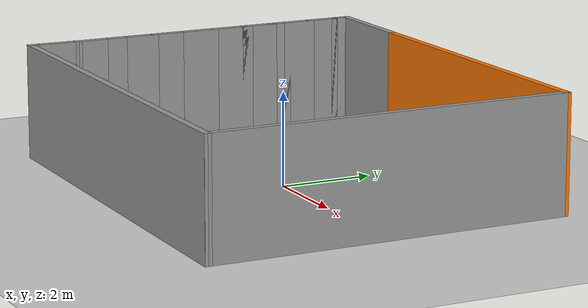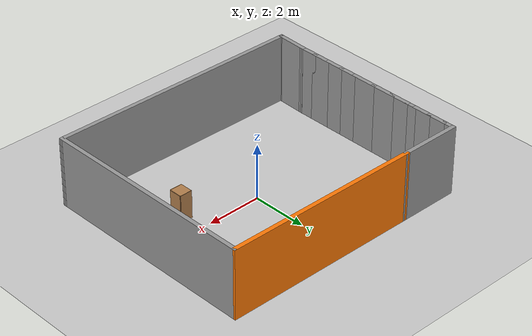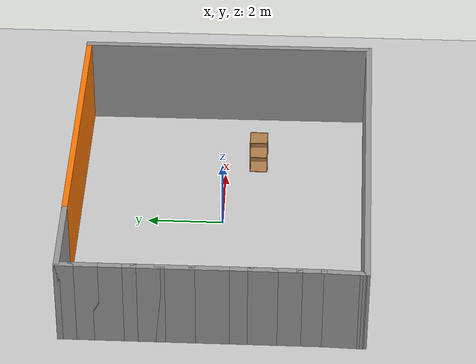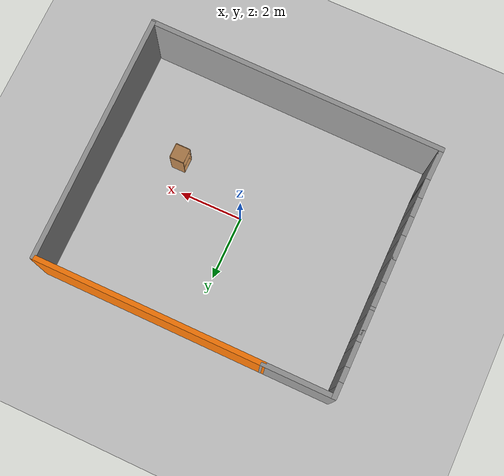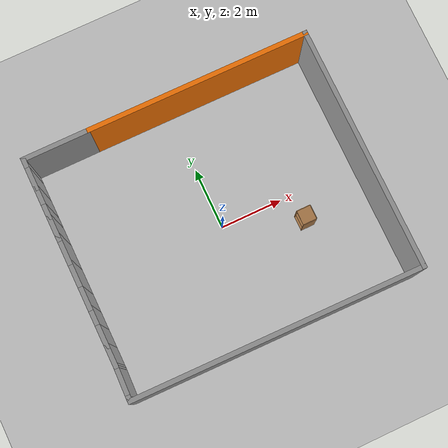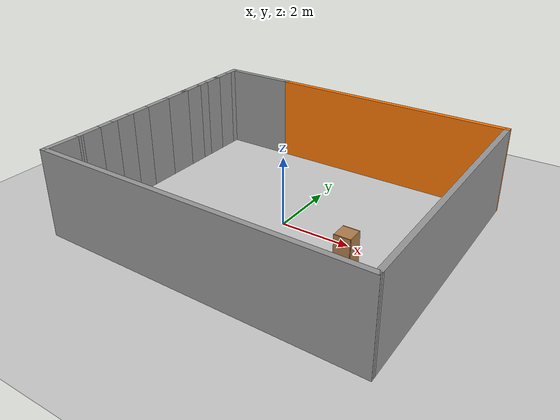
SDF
<sdf version="1.7">
 <world name="default">
  <light name="sun" type="directional">
   <pose>0 0 10 0 -0 0</pose>
   <diffuse>0.8 0.8 0.8 1</diffuse>
   <specular>0.2 0.2 0.2 1</specular>
   <attenuation>
    <range>1000</range>
    <constant>0.9</constant>
    <linear>0.01</linear>
    <quadratic>0.001</quadratic>
   </attenuation>
   <direction>-0.5 0.1 -0.9</direction>
   <spot><inner_angle>0</inner_angle><outer_angle>0</outer_angle><falloff>0</falloff></spot>
  </light>
  <model name="ground_plane">
   <static>1</static>
   <link name="link">
    <collision name="collision">
     <geometry><plane><normal>0 0 1</normal><size>100 100</size></plane></geometry>
     <surface>
      <contact><collide_bitmask>65535</collide_bitmask></contact>
      <friction><ode><mu>100</mu><mu2>50</mu2></ode></friction>
     </surface>
    </collision>
    <visual name="visual">
     <cast_shadows>0</cast_shadows>
     <geometry><plane><normal>0 0 1</normal><size>100 100</size></plane></geometry>
     <material>
      <script><uri>file://media/materials/scripts/gazebo.material</uri><name>Gazebo/Grey</name></script>
     </material>
    </visual>
   </link>
  </model>
  <gravity>0 0 -9.8</gravity>
  <magnetic_field>6e-06 2.3e-05 -4.2e-05</magnetic_field>
  <atmosphere type="adiabatic"/>
  <physics type="ode">
   <max_step_size>0.001</max_step_size>
   <real_time_factor>1</real_time_factor>
   <real_time_update_rate>1000</real_time_update_rate>
  </physics>
  <scene><ambient>0.4 0.4 0.4 1</ambient><background>0.7 0.7 0.7 1</background><shadows>1</shadows></scene>
  <audio><device>default</device></audio>
  <spherical_coordinates>
   <surface_model>EARTH_WGS84</surface_model>
   <latitude_deg>0</latitude_deg>
   <longitude_deg>0</longitude_deg>
   <elevation>0</elevation>
   <heading_deg>0</heading_deg>
  </spherical_coordinates>
  <model name="Untitled">
   <pose>-0.022327 0.03811 0 0 -0 0</pose>
   <link name="Wall_25">
    <collision name="Wall_25_Collision">
     <geometry><box><size>9.35832 0.15 2.5</size></box></geometry>
     <pose>0 0 1.25 0 -0 0</pose>
    </collision>
    <visual name="Wall_25_Visual">
     <pose>0 0 1.25 0 -0 0</pose>
     <geometry><box><size>9.35832 0.15 2.5</size></box></geometry>
     <material>
      <script><uri>file://media/materials/scripts/gazebo.material</uri><name>Gazebo/Grey</name></script>
      <ambient>1 1 1 1</ambient>
     </material>
     <meta><layer>0</layer></meta>
    </visual>
    <pose>0.00085 -3.82916 0 0 -0 -0.011114</pose>
   </link>
   <link name="Wall_26">
    <collision name="Wall_26_Collision">
     <geometry><box><size>7.88834 0.15 2.5</size></box></geometry>
     <pose>0 0 1.25 0 -0 0</pose>
    </collision>
    <visual name="Wall_26_Visual">
     <pose>0 0 1.25 0 -0 0</pose>
     <geometry><box><size>7.88834 0.15 2.5</size></box></geometry>
     <material>
      <script><uri>file://media/materials/scripts/gazebo.material</uri><name>Gazebo/Grey</name></script>
      <ambient>1 1 1 1</ambient>
     </material>
     <meta><layer>0</layer></meta>
    </visual>
    <pose>4.58764 -0.008353 0 0 -0 1.57521</pose>
   </link>
   <link name="Wall_28">
    <collision name="Wall_28_Collision">
     <geometry><box><size>7.19057 0.15 2.5</size></box></geometry>
     <pose>0 0 1.25 0 -0 0</pose>
    </collision>
    <visual name="Wall_28_Visual">
     <pose>0 0 1.25 0 -0 0</pose>
     <geometry><box><size>7.19057 0.15 2.5</size></box></geometry>
     <material>
      <script><uri>file://media/materials/scripts/gazebo.material</uri><name>Gazebo/Grey</name></script>
      <ambient>0.996078 0.47451 0.0196078 1</ambient>
     </material>
     <meta><layer>0</layer></meta>
    </visual>
    <pose>1.0503 3.8723 0 0 -0 3.13913</pose>
   </link>
   <link name="Wall_49">
    <collision name="Wall_49_Collision">
     <geometry><box><size>2.25 0.15 2.5</size></box></geometry>
     <pose>0 0 1.25 0 -0 0</pose>
    </collision>
    <visual name="Wall_49_Visual">
     <pose>0 0 1.25 0 -0 0</pose>
     <geometry><box><size>2.25 0.15 2.5</size></box></geometry>
     <material>
      <script><uri>file://media/materials/scripts/gazebo.material</uri><name>Gazebo/Grey</name></script>
      <ambient>1 1 1 1</ambient>
     </material>
     <meta><layer>0</layer></meta>
    </visual>
    <pose>-3.51997 3.88097 0 0 -0 3.14159</pose>
   </link>
   <link name="Wall_51">
    <collision name="Wall_51_Collision">
     <geometry><box><size>0.5 0.15 2.5</size></box></geometry>
     <pose>0 0 1.25 0 -0 0</pose>
    </collision>
    <visual name="Wall_51_Visual">
     <pose>0 0 1.25 0 -0 0</pose>
     <geometry><box><size>0.5 0.15 2.5</size></box></geometry>
     <material>
      <script><uri>file://media/materials/scripts/gazebo.material</uri><name>Gazebo/Grey</name></script>
      <ambient>1 1 1 1</ambient>
     </material>
     <meta><layer>0</layer></meta>
    </visual>
    <pose>-4.56997 3.70597 0 0 -0 -1.5708</pose>
   </link>
   <link name="Wall_54">
    <collision name="Wall_54_Collision">
     <geometry><box><size>0.75 0.15 2.5</size></box></geometry>
     <pose>0 0 1.25 0 -0 0</pose>
    </collision>
    <visual name="Wall_54_Visual">
     <pose>0 0 1.25 0 -0 0</pose>
     <geometry><box><size>0.75 0.15 2.5</size></box></geometry>
     <material>
      <script><uri>file://media/materials/scripts/gazebo.material</uri><name>Gazebo/Grey</name></script>
      <ambient>1 1 1 1</ambient>
     </material>
     <meta><layer>0</layer></meta>
    </visual>
    <pose>-4.56997 3.23097 0 0 -0 -1.5708</pose>
   </link>
   <link name="Wall_56">
    <collision name="Wall_56_Collision">
     <geometry><box><size>0.75 0.15 2.5</size></box></geometry>
     <pose>0 0 1.25 0 -0 0</pose>
    </collision>
    <visual name="Wall_56_Visual">
     <pose>0 0 1.25 0 -0 0</pose>
     <geometry><box><size>0.75 0.15 2.5</size></box></geometry>
     <material>
      <script><uri>file://media/materials/scripts/gazebo.material</uri><name>Gazebo/Grey</name></script>
      <ambient>1 1 1 1</ambient>
     </material>
     <meta><layer>0</layer></meta>
    </visual>
    <pose>-4.56997 2.63097 0 0 -0 -1.5708</pose>
   </link>
   <link name="Wall_58">
    <collision name="Wall_58_Collision">
     <geometry><box><size>0.5 0.15 2.5</size></box></geometry>
     <pose>0 0 1.25 0 -0 0</pose>
    </collision>
    <visual name="Wall_58_Visual">
     <pose>0 0 1.25 0 -0 0</pose>
     <geometry><box><size>0.5 0.15 2.5</size></box></geometry>
     <material>
      <script><uri>file://media/materials/scripts/gazebo.material</uri><name>Gazebo/Grey</name></script>
      <ambient>1 1 1 1</ambient>
     </material>
     <meta><layer>0</layer></meta>
    </visual>
    <pose>-4.56997 2.15597 0 0 -0 -1.5708</pose>
   </link>
   <link name="Wall_62">
    <collision name="Wall_62_Collision">
     <geometry><box><size>0.75 0.15 2.5</size></box></geometry>
     <pose>0 0 1.25 0 -0 0</pose>
    </collision>
    <visual name="Wall_62_Visual">
     <pose>0 0 1.25 0 -0 0</pose>
     <geometry><box><size>0.75 0.15 2.5</size></box></geometry>
     <material>
      <script><uri>file://media/materials/scripts/gazebo.material</uri><name>Gazebo/Grey</name></script>
      <ambient>1 1 1 1</ambient>
     </material>
     <meta><layer>0</layer></meta>
    </visual>
    <pose>-4.56997 1.68097 0 0 -0 -1.5708</pose>
   </link>
   <link name="Wall_63">
    <collision name="Wall_63_Collision">
     <geometry><box><size>0.25 0.15 2.5</size></box></geometry>
     <pose>0 0 1.25 0 -0 0</pose>
    </collision>
    <visual name="Wall_63_Visual">
     <pose>0 0 1.25 0 -0 0</pose>
     <geometry><box><size>0.25 0.15 2.5</size></box></geometry>
     <material>
      <script><uri>file://media/materials/scripts/gazebo.material</uri><name>Gazebo/Grey</name></script>
      <ambient>1 1 1 1</ambient>
     </material>
     <meta><layer>0</layer></meta>
    </visual>
    <pose>-4.56997 1.33097 0 0 -0 -1.5708</pose>
   </link>
   <link name="Wall_65">
    <collision name="Wall_65_Collision">
     <geometry><box><size>1 0.15 2.5</size></box></geometry>
     <pose>0 0 1.25 0 -0 0</pose>
    </collision>
    <visual name="Wall_65_Visual">
     <pose>0 0 1.25 0 -0 0</pose>
     <geometry><box><size>1 0.15 2.5</size></box></geometry>
     <material>
      <script><uri>file://media/materials/scripts/gazebo.material</uri><name>Gazebo/Grey</name></script>
      <ambient>1 1 1 1</ambient>
     </material>
     <meta><layer>0</layer></meta>
    </visual>
    <pose>-4.56997 0.955971 0 0 -0 -1.5708</pose>
   </link>
   <link name="Wall_67">
    <collision name="Wall_67_Collision">
     <geometry><box><size>1 0.15 2.5</size></box></geometry>
     <pose>0 0 1.25 0 -0 0</pose>
    </collision>
    <visual name="Wall_67_Visual">
     <pose>0 0 1.25 0 -0 0</pose>
     <geometry><box><size>1 0.15 2.5</size></box></geometry>
     <material>
      <script><uri>file://media/materials/scripts/gazebo.material</uri><name>Gazebo/Grey</name></script>
      <ambient>1 1 1 1</ambient>
     </material>
     <meta><layer>0</layer></meta>
    </visual>
    <pose>-4.56997 0.105971 0 0 -0 -1.5708</pose>
   </link>
   <link name="Wall_69">
    <collision name="Wall_69_Collision">
     <geometry><box><size>0.75 0.15 2.5</size></box></geometry>
     <pose>0 0 1.25 0 -0 0</pose>
    </collision>
    <visual name="Wall_69_Visual">
     <pose>0 0 1.25 0 -0 0</pose>
     <geometry><box><size>0.75 0.15 2.5</size></box></geometry>
     <material>
      <script><uri>file://media/materials/scripts/gazebo.material</uri><name>Gazebo/Grey</name></script>
      <ambient>1 1 1 1</ambient>
     </material>
     <meta><layer>0</layer></meta>
    </visual>
    <pose>-4.56997 -0.619029 0 0 -0 -1.5708</pose>
   </link>
   <link name="Wall_71">
    <collision name="Wall_71_Collision">
     <geometry><box><size>0.75 0.15 2.5</size></box></geometry>
     <pose>0 0 1.25 0 -0 0</pose>
    </collision>
    <visual name="Wall_71_Visual">
     <pose>0 0 1.25 0 -0 0</pose>
     <geometry><box><size>0.75 0.15 2.5</size></box></geometry>
     <material>
      <script><uri>file://media/materials/scripts/gazebo.material</uri><name>Gazebo/Grey</name></script>
      <ambient>1 1 1 1</ambient>
     </material>
     <meta><layer>0</layer></meta>
    </visual>
    <pose>-4.56997 -1.21903 0 0 -0 -1.5708</pose>
   </link>
   <link name="Wall_73">
    <collision name="Wall_73_Collision">
     <geometry><box><size>0.75 0.15 2.5</size></box></geometry>
     <pose>0 0 1.25 0 -0 0</pose>
    </collision>
    <visual name="Wall_73_Visual">
     <pose>0 0 1.25 0 -0 0</pose>
     <geometry><box><size>0.75 0.15 2.5</size></box></geometry>
     <material>
      <script><uri>file://media/materials/scripts/gazebo.material</uri><name>Gazebo/Grey</name></script>
      <ambient>1 1 1 1</ambient>
     </material>
     <meta><layer>0</layer></meta>
    </visual>
    <pose>-4.56997 -1.81903 0 0 -0 -1.5708</pose>
   </link>
   <link name="Wall_75">
    <collision name="Wall_75_Collision">
     <geometry><box><size>0.75 0.15 2.5</size></box></geometry>
     <pose>0 0 1.25 0 -0 0</pose>
    </collision>
    <visual name="Wall_75_Visual">
     <pose>0 0 1.25 0 -0 0</pose>
     <geometry><box><size>0.75 0.15 2.5</size></box></geometry>
     <material>
      <script><uri>file://media/materials/scripts/gazebo.material</uri><name>Gazebo/Grey</name></script>
      <ambient>1 1 1 1</ambient>
     </material>
     <meta><layer>0</layer></meta>
    </visual>
    <pose>-4.56997 -2.41903 0 0 -0 -1.5708</pose>
   </link>
   <link name="Wall_77">
    <collision name="Wall_77_Collision">
     <geometry><box><size>1.10669 0.15 2.5</size></box></geometry>
     <pose>0 0 1.25 0 -0 0</pose>
    </collision>
    <visual name="Wall_77_Visual">
     <pose>0 0 1.25 0 -0 0</pose>
     <geometry><box><size>1.10669 0.15 2.5</size></box></geometry>
     <material>
      <script><uri>file://media/materials/scripts/gazebo.material</uri><name>Gazebo/Grey</name></script>
      <ambient>1 1 1 1</ambient>
     </material>
     <meta><layer>0</layer></meta>
    </visual>
    <pose>-4.58649 -3.19709 0 0 -0 -1.60533</pose>
   </link>
   <link name="Wall_79">
    <collision name="Wall_79_Collision">
     <geometry><box><size>0.25 0.15 2.5</size></box></geometry>
     <pose>0 0 1.25 0 -0 0</pose>
    </collision>
    <visual name="Wall_79_Visual">
     <pose>0 0 1.25 0 -0 0</pose>
     <geometry><box><size>0.25 0.15 2.5</size></box></geometry>
     <material>
      <script><uri>file://media/materials/scripts/gazebo.material</uri><name>Gazebo/Grey</name></script>
      <ambient>1 1 1 1</ambient>
     </material>
     <meta><layer>0</layer></meta>
    </visual>
    <pose>-4.60301 -3.72515 0 0 -0 -1.5708</pose>
   </link>
   <static>1</static>
  </model>
  <model name="cabinet">
   <static>1</static>
   <link name="cabinet_bottom_plate">
    <inertial>
     <pose>0 0 -1 0 -0 0</pose>
     <inertia><ixx>2.05</ixx><ixy>0</ixy><ixz>0</ixz><iyy>2.05</iyy><iyz>0</iyz><izz>2.05</izz></inertia>
     <mass>25</mass>
    </inertial>
    <collision name="cabinet_bottom_plate_geom">
     <pose>0 0 0.01 0 -0 0</pose>
     <geometry><box><size>0.45 0.45 0.02</size></box></geometry>
    </collision>
    <visual name="cabinet_bottom_plate_geom_visual">
     <pose>0 0 0.01 0 -0 0</pose>
     <geometry><box><size>0.45 0.45 0.02</size></box></geometry>
     <material>
      <script><uri>file://media/materials/scripts/gazebo.material</uri><name>Gazebo/Wood</name></script>
     </material>
    </visual>
    <collision name="cabinet_bottom_plate_geom_cabinet_back_plate">
     <pose>0.235 0 0.51 0 -0 0</pose>
     <geometry><box><size>0.02 0.45 1.02</size></box></geometry>
    </collision>
    <visual name="cabinet_bottom_plate_geom_cabinet_back_plate_visual">
     <pose>0.235 0 0.51 0 -0 0</pose>
     <geometry><box><size>0.02 0.45 1.02</size></box></geometry>
     <material>
      <script><uri>file://media/materials/scripts/gazebo.material</uri><name>Gazebo/Wood</name></script>
     </material>
    </visual>
    <collision name="cabinet_bottom_plate_geom_cabinet_left_plate">
     <pose>0 0.235 0.51 0 -0 0</pose>
     <geometry><box><size>0.45 0.02 1.02</size></box></geometry>
    </collision>
    <visual name="cabinet_bottom_plate_geom_cabinet_left_plate_visual">
     <pose>0 0.235 0.51 0 -0 0</pose>
     <geometry><box><size>0.45 0.02 1.02</size></box></geometry>
     <material>
      <script><uri>file://media/materials/scripts/gazebo.material</uri><name>Gazebo/Wood</name></script>
     </material>
    </visual>
    <collision name="cabinet_bottom_plate_geom_cabinet_middle_plate">
     <pose>0 0 0.51 0 -0 0</pose>
     <geometry><box><size>0.45 0.45 0.02</size></box></geometry>
    </collision>
    <visual name="cabinet_bottom_plate_geom_cabinet_middle_plate_visual">
     <pose>0 0 0.51 0 -0 0</pose>
     <geometry><box><size>0.45 0.45 0.02</size></box></geometry>
     <material>
      <script><uri>file://media/materials/scripts/gazebo.material</uri><name>Gazebo/Wood</name></script>
     </material>
    </visual>
    <collision name="cabinet_bottom_plate_geom_cabinet_right_plate">
     <pose>0 -0.235 0.51 0 -0 0</pose>
     <geometry><box><size>0.45 0.02 1.02</size></box></geometry>
    </collision>
    <visual name="cabinet_bottom_plate_geom_cabinet_right_plate_visual">
     <pose>0 -0.235 0.51 0 -0 0</pose>
     <geometry><box><size>0.45 0.02 1.02</size></box></geometry>
     <material>
      <script><uri>file://media/materials/scripts/gazebo.material</uri><name>Gazebo/Wood</name></script>
     </material>
    </visual>
    <collision name="cabinet_bottom_plate_geom_cabinet_top_plate">
     <pose>0 0 1.01 0 -0 0</pose>
     <geometry><box><size>0.45 0.45 0.02</size></box></geometry>
    </collision>
    <visual name="cabinet_bottom_plate_geom_cabinet_top_plate_visual">
     <pose>0 0 1.01 0 -0 0</pose>
     <geometry><box><size>0.45 0.45 0.02</size></box></geometry>
     <material>
      <script><uri>file://media/materials/scripts/gazebo.material</uri><name>Gazebo/Wood</name></script>
     </material>
    </visual>
   </link>
   <pose>2.4009 -0.886097 0 0 -0 0</pose>
  </model>
 </world>
</sdf>
